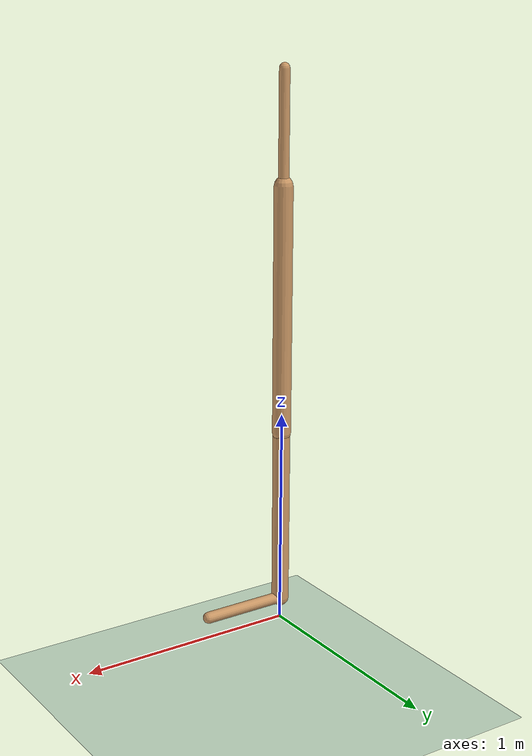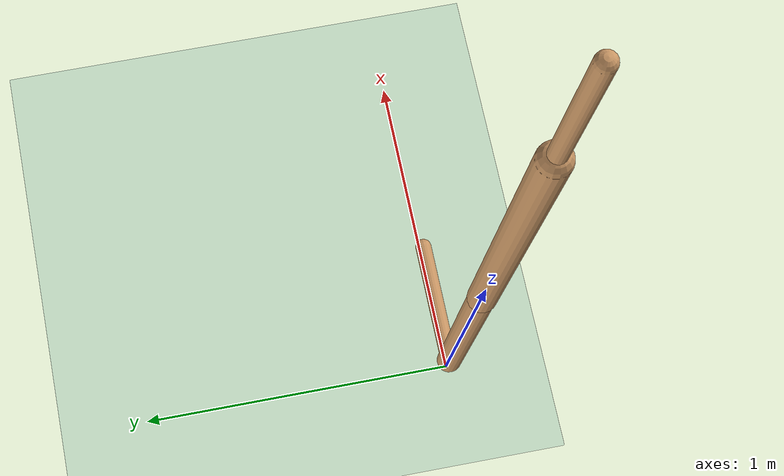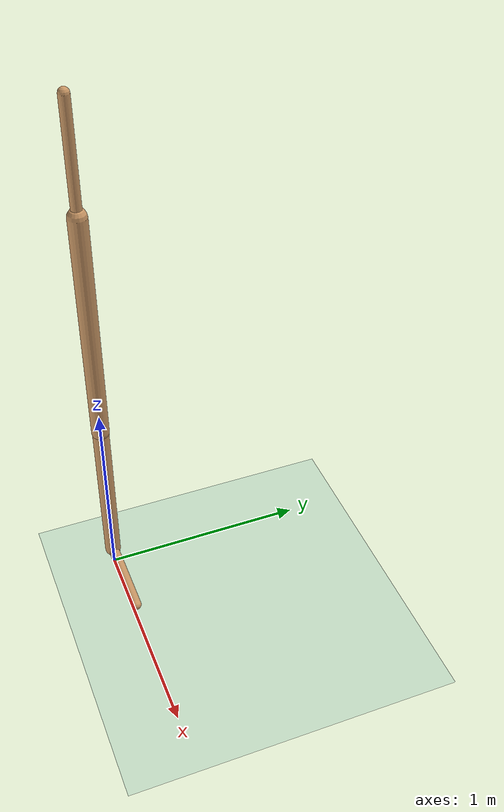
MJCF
<mujoco model="walker2d">
  <compiler angle="degree" inertiafromgeom="true" />
  <default>
    <joint armature="0.01" damping=".1" limited="true" />
    <geom conaffinity="0" condim="3" contype="1" density="1000" friction=".7 .1 .1" rgba="0.8 0.6 .4 1" />
  </default>
  <option integrator="RK4" timestep="0.002" />
  <worldbody>
    <light cutoff="100" diffuse="1 1 1" dir="-0 0 -1.3" directional="true" exponent="1" pos="0 0 1.3" specular=".1 .1 .1" />
    <geom conaffinity="1" condim="3" name="floor" pos="0 0 0" rgba="0.8 0.9 0.8 1" size="40 40 40" type="plane" material="MatPlane" />
    <body name="torso" pos="0 0 2.277521213889122">
      <camera name="track" mode="trackcom" pos="0 -5 -1.25" xyaxes="1 0 0 0 0 1" />
      <joint armature="0" axis="1 0 0" damping="0" limited="false" name="rootx" pos="0 0 -1.25" stiffness="0" type="slide" />
      <joint armature="0" axis="0 0 1" damping="0" limited="false" name="rootz" pos="0 0 -1.25" ref="1.25" stiffness="0" type="slide" />
      <joint armature="0" axis="0 1 0" damping="0" limited="false" name="rooty" pos="0 0 0" stiffness="0" type="hinge" />
      <geom friction="0.9" name="torso_geom" size="0.023324953392148018 0.2461993545293808" type="capsule" />
      <body name="thigh" pos="0 0 -0.2461993545293808">
        <joint axis="0 -1 0" name="thigh_joint" pos="0 0 0" range="-150 0" type="hinge" />
        <site name="torso_thigh_site" pos="0 0 0" size="0.01" type="sphere" rgba="1 0 0 0.5" />
        <geom friction="0.9" pos="0 0 -0.5588425397872925" name="thigh_geom" size="0.042009711265563965 0.5588425397872925" type="capsule" />
        <body name="leg" pos="0 0 -1.524503469467163">
          <joint axis="0 -1 0" name="leg_joint" pos="0 0 0.4068183898925781" range="-150 0" type="hinge" />
          <site name="thigh_leg_site" pos="0 0 0.25" size="0.01" type="sphere" rgba="1 0 0 0.5" />
          <geom friction="0.9" name="leg_geom" size="0.03907312825322151 0.4068183898925781" type="capsule" />
          <body name="foot" pos="0.390614777803421 0 -0.5068183898925781">
            <joint axis="0 -1 0" name="foot_joint" pos="-0.390614777803421 0 0.1" range="-45 45" type="hinge" />
            <site name="leg_foot_site" pos="-0.2 0 0.1" size="0.01" type="sphere" rgba="1 0 0 0.5" />
            <geom friction="0.9" pos="-0.1953073889017105 0 0.1" quat="0.70710678118654757 0 -0.70710678118654746 0" name="foot_geom" size="0.026336519047617912 0.1953073889017105" type="capsule" />
          </body>
        </body>
      </body>

      <body name="thigh_left" pos="0 0 -0.2461993545293808">
        <joint axis="0 -1 0" name="thigh_left_joint" pos="0 0 0" range="-150 0" type="hinge" />
        <site name="torso_thigh_left_site" pos="0 0 0" size="0.01" type="sphere" rgba="1 0 0 0.5" />
        <geom friction="0.9" name="thigh_left_geom" rgba=".7 .3 .6 1" size="0.042009711265563965 0.5588425397872925" pos="0 0 -0.5588425397872925" type="capsule" />
        <body name="leg_left" pos="0 0 -1.524503469467163">
          <joint axis="0 -1 0" name="leg_left_joint" pos="0 0 0.4068183898925781" range="-150 0" type="hinge" />
          <site name="thigh_leg_left_site" pos="0 0 0.25" size="0.01" type="sphere" rgba="1 0 0 0.5" />
          <geom friction="0.9" name="leg_left_geom" rgba=".7 .3 .6 1" size="0.03907312825322151 0.4068183898925781" type="capsule" />
          <body name="foot_left" pos="0.390614777803421 0 -0.5068183898925781">
            <joint axis="0 -1 0" name="foot_left_joint" pos="-0.390614777803421 0 0.1" range="-45 45" type="hinge" />
            <site name="leg_foot_left_site" pos="-0.2 0 0.1" size="0.01" type="sphere" rgba="1 0 0 0.5" />
            <geom friction="1.9" name="foot_left_geom" rgba=".7 .3 .6 1" size="0.026336519047617912 0.1953073889017105" pos="-0.1953073889017105 0 0.1" type="capsule" quat="0.70710678118654757 0 -0.70710678118654746 0" />
          </body>
        </body>
      </body>
    </body>
  </worldbody>
  <actuator>

    <motor ctrllimited="true" ctrlrange="-1.0 1.0" gear="175.3340740669724" joint="thigh_joint" />
    <motor ctrllimited="true" ctrlrange="-1.0 1.0" gear="155.2733600520503" joint="leg_joint" />
    <motor ctrllimited="true" ctrlrange="-1.0 1.0" gear="37.62988739852162" joint="foot_joint" />
    <motor ctrllimited="true" ctrlrange="-1.0 1.0" gear="175.3340740669724" joint="thigh_left_joint" />
    <motor ctrllimited="true" ctrlrange="-1.0 1.0" gear="155.2733600520503" joint="leg_left_joint" />
    <motor ctrllimited="true" ctrlrange="-1.0 1.0" gear="37.62988739852162" joint="foot_left_joint" />

  </actuator>
    <asset>
        <texture type="skybox" builtin="gradient" rgb1=".4 .5 .6" rgb2="0 0 0" width="100" height="100" />
        <texture builtin="flat" height="1278" mark="cross" markrgb="1 1 1" name="texgeom" random="0.01" rgb1="0.8 0.6 0.4" rgb2="0.8 0.6 0.4" type="cube" width="127" />
        <texture builtin="checker" height="100" name="texplane" rgb1="0 0 0" rgb2="0.8 0.8 0.8" type="2d" width="100" />
        <material name="MatPlane" reflectance="0.5" shininess="1" specular="1" texrepeat="60 60" texture="texplane" />
        <material name="geom" texture="texgeom" texuniform="true" />
    </asset>

  <sensor>
    <force site="torso_thigh_site" name="torso_thigh_sensor" />
    <force site="thigh_leg_site" name="thigh_leg_sensor" />
    <force site="leg_foot_site" name="leg_foot_sensor" />
    <force site="torso_thigh_left_site" name="torso_thigh_left_sensor" />
    <force site="thigh_leg_left_site" name="thigh_leg_left_sensor" />
    <force site="leg_foot_left_site" name="leg_foot_left_sensor" />
  </sensor>
</mujoco>
